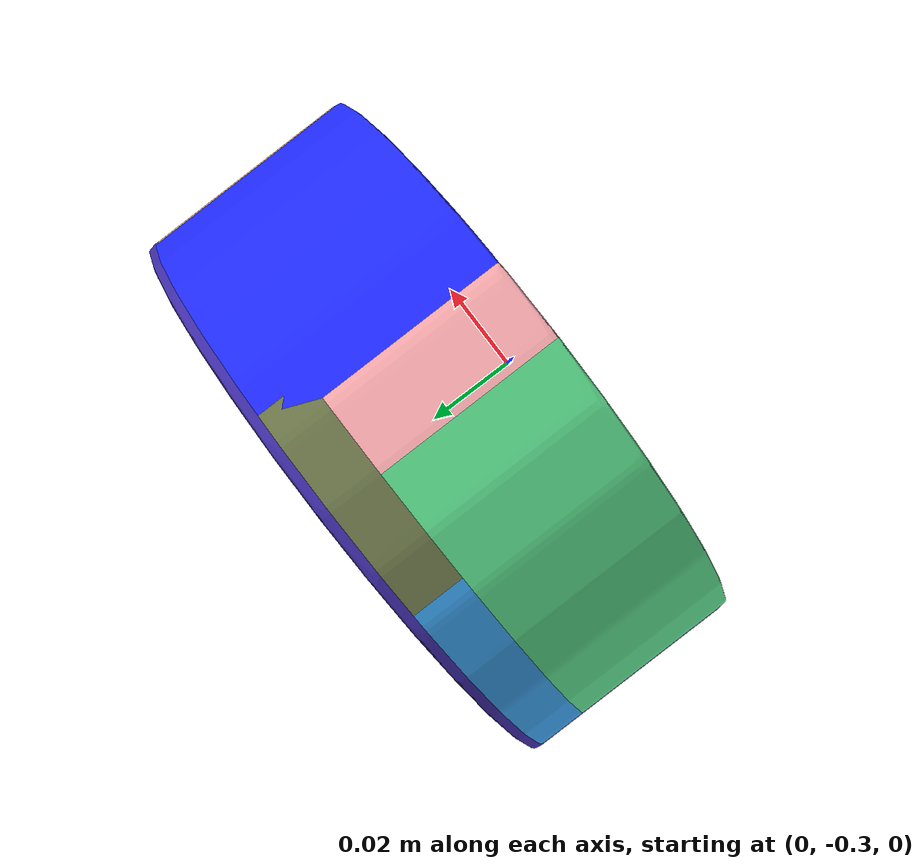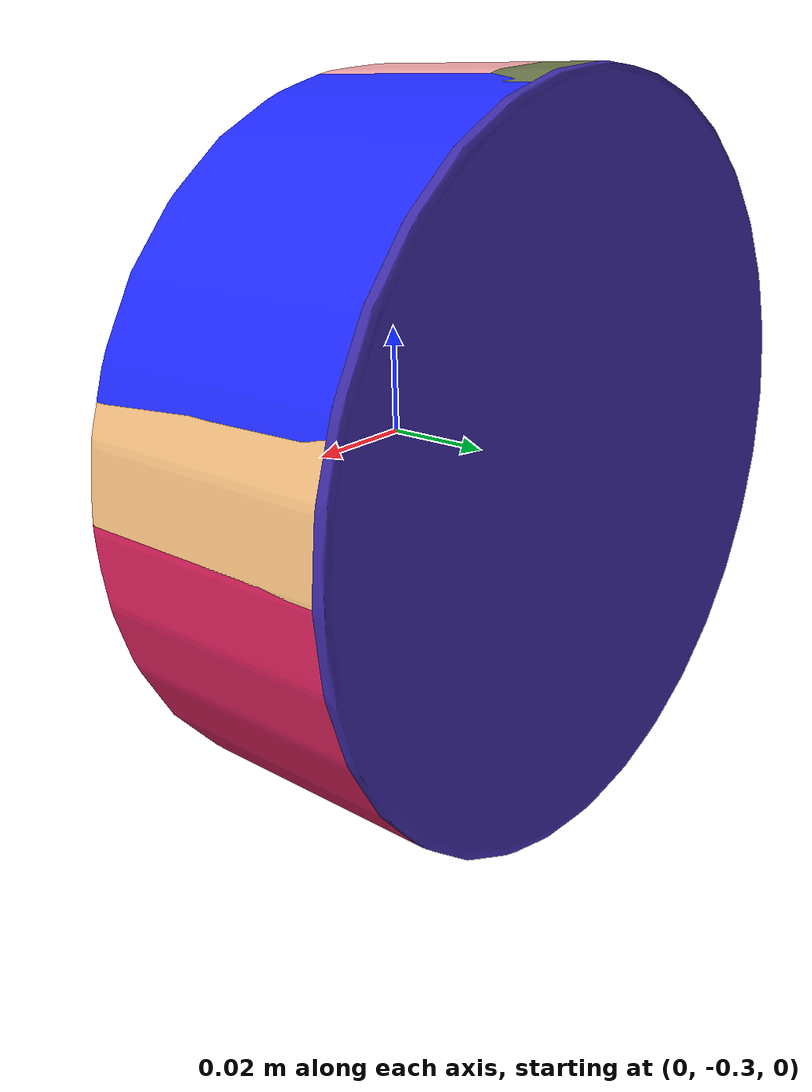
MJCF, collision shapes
<mujoco model="base_rbf">
  <default>
    <default class="visual">
      <geom group="2" type="mesh" contype="0" conaffinity="0"/>
    </default>
    <default class="collision">
      <geom group="3" type="mesh"/>
    </default>
  </default>
  <asset>
    <mesh file="base_rbf.obj"/>
    <mesh file="base_rbf_collision_0.obj"/>
    <mesh file="base_rbf_collision_1.obj"/>
    <mesh file="base_rbf_collision_2.obj"/>
    <mesh file="base_rbf_collision_3.obj"/>
    <mesh file="base_rbf_collision_4.obj"/>
    <mesh file="base_rbf_collision_5.obj"/>
    <mesh file="base_rbf_collision_6.obj"/>
    <mesh file="base_rbf_collision_7.obj"/>
    <mesh file="base_rbf_collision_8.obj"/>
    <mesh file="base_rbf_collision_9.obj"/>
    <mesh file="base_rbf_collision_10.obj"/>
    <mesh file="base_rbf_collision_11.obj"/>
    <mesh file="base_rbf_collision_12.obj"/>
    <mesh file="base_rbf_collision_13.obj"/>
    <mesh file="base_rbf_collision_14.obj"/>
  </asset>
  <worldbody>
    <body name="base_rbf">
      <geom mesh="base_rbf" class="visual"/>
      <geom mesh="base_rbf_collision_0" rgba="0.24115817520653915 0.1687402362471312 0.6468572964981083 1" class="collision"/>
      <geom mesh="base_rbf_collision_1" rgba="0.45885597951225887 0.7845803787680864 0.4155523410476143 1" class="collision"/>
      <geom mesh="base_rbf_collision_2" rgba="0.9651798047202657 0.6592251538386993 0.6739963975014334 1" class="collision"/>
      <geom mesh="base_rbf_collision_3" rgba="0.2315024162762207 0.9765081125363123 0.03763137265616112 1" class="collision"/>
      <geom mesh="base_rbf_collision_4" rgba="0.4540219627261938 0.4073629050017079 0.6952255645752806 1" class="collision"/>
      <geom mesh="base_rbf_collision_5" rgba="0.2409081093088632 0.07829861473424182 0.28250848308701915 1" class="collision"/>
      <geom mesh="base_rbf_collision_6" rgba="0.8888937046113482 0.8637104362955579 0.7648752256565822 1" class="collision"/>
      <geom mesh="base_rbf_collision_7" rgba="0.35267570490776157 0.8532674894430606 0.5436827877949225 1" class="collision"/>
      <geom mesh="base_rbf_collision_8" rgba="0.9627244430959125 0.7516864878563337 0.5053465863186191 1" class="collision"/>
      <geom mesh="base_rbf_collision_9" rgba="0.890392136200353 0.13932170154116164 0.380959376451135 1" class="collision"/>
      <geom mesh="base_rbf_collision_10" rgba="0.1193069222918074 0.15979083650490133 0.9996264946741902 1" class="collision"/>
      <geom mesh="base_rbf_collision_11" rgba="0.12582566257394556 0.7370891143521316 0.24308496399141732 1" class="collision"/>
      <geom mesh="base_rbf_collision_12" rgba="0.8451746435386327 0.19629702827650086 0.5088125049845166 1" class="collision"/>
      <geom mesh="base_rbf_collision_13" rgba="0.22532637878739703 0.6209223004692725 0.9133982718341188 1" class="collision"/>
      <geom mesh="base_rbf_collision_14" rgba="0.4215125127378594 0.46412280244380943 0.2862697888863004 1" class="collision"/>
    </body>
  </worldbody>
</mujoco>
